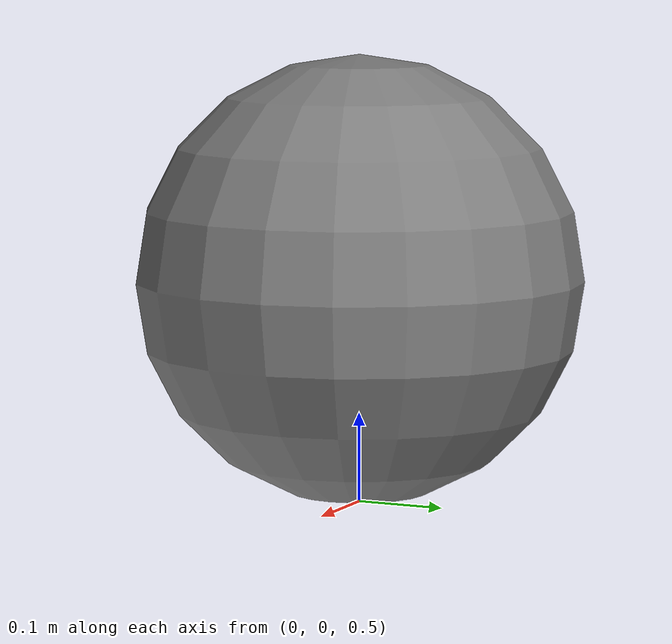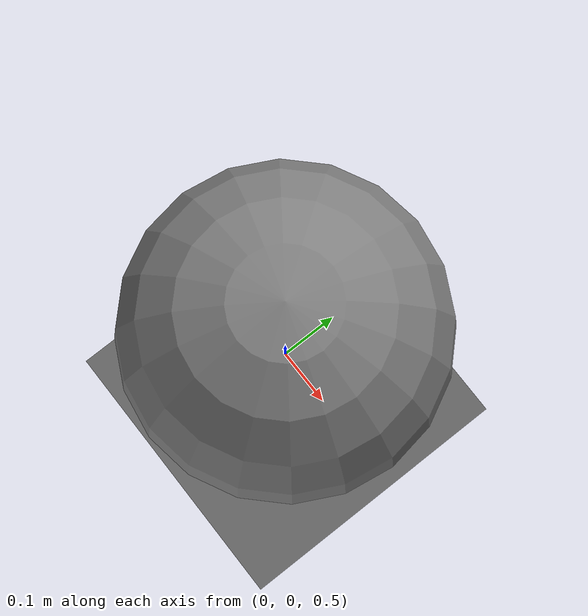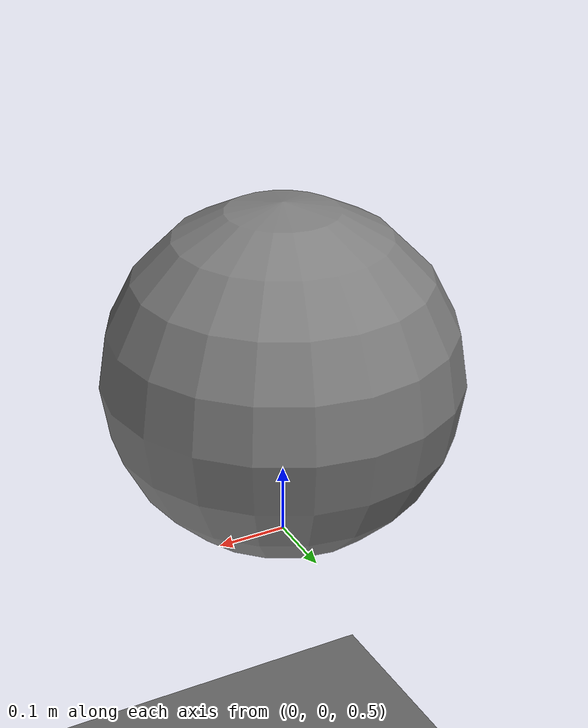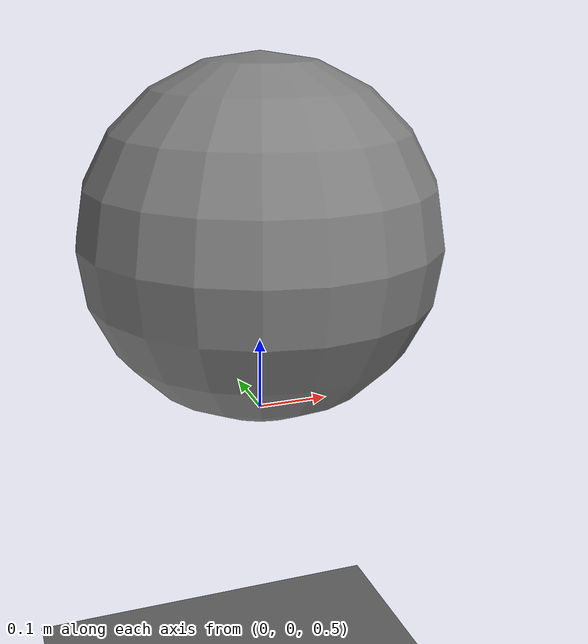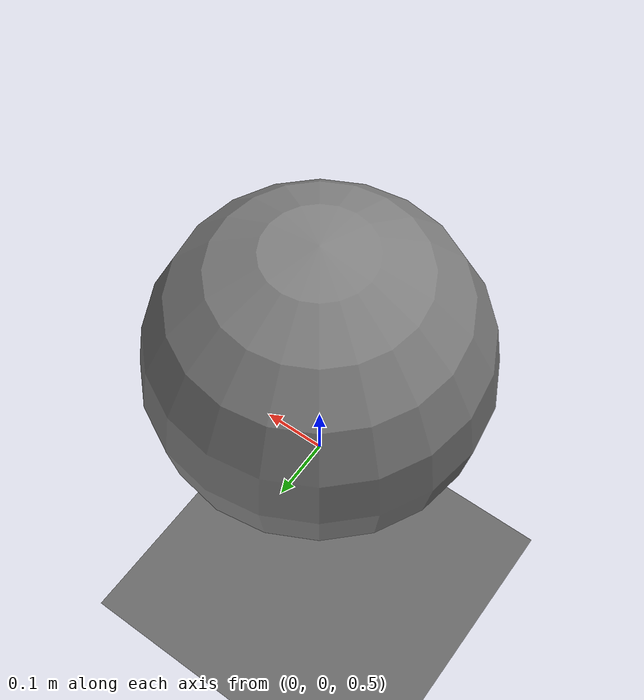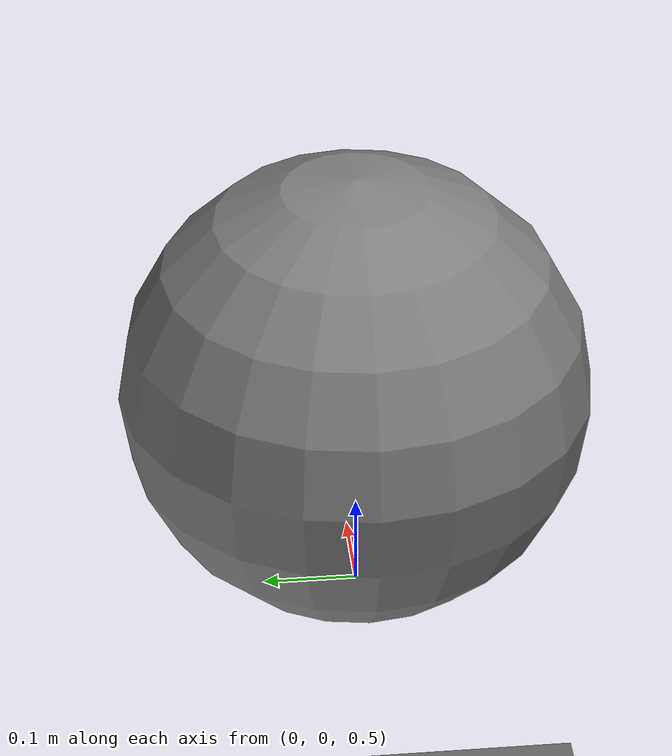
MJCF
<mujoco model="ant">
  <compiler angle="degree" coordinate="local" inertiafromgeom="true"/>
  <option timestep="0.01" iterations="4" />
  <custom>
    <!-- brax custom params -->
    <numeric data="0.0 0.0 0.55 1.0 0.0 0.0 0.0 0.0 1.0 0.0 -1.0 0.0 -1.0 0.0 1.0" name="init_qpos"/>
    <numeric data="1000" name="constraint_limit_stiffness"/>
    <numeric data="4000" name="constraint_stiffness"/>
    <numeric data="10" name="constraint_ang_damping"/>
    <numeric data="20" name="constraint_vel_damping"/>
    <numeric data="0.5" name="joint_scale_pos"/>
    <numeric data="0.2" name="joint_scale_ang"/>
    <numeric data="0.0" name="ang_damping"/>
    <numeric data="1" name="spring_mass_scale"/>
    <numeric data="1" name="spring_inertia_scale"/>
    <numeric data="15" name="solver_maxls"/>
  </custom>
  <default>
    <joint armature="1" damping="1" limited="true"/>
    <geom contype="0" conaffinity="0" condim="3" density="5.0" friction="1 0.5 0.5"/>
  </default>
  <asset>
    <texture builtin="gradient" height="100" rgb1="1 1 1" rgb2="0 0 0" type="skybox" width="100"/>
    <texture builtin="flat" height="1278" mark="cross" markrgb="1 1 1" name="texgeom" random="0.01" rgb1="0.8 0.6 0.4" rgb2="0.8 0.6 0.4" type="cube" width="127"/>
    <texture builtin="checker" height="100" name="texplane" rgb1="0 0 0" rgb2="0.8 0.8 0.8" type="2d" width="100"/>
    <material name="MatPlane" reflectance="0.5" shininess="1" specular="1" texrepeat="60 60" texture="texplane"/>
    <material name="geom" texture="texgeom" texuniform="true"/>
  </asset>
  <worldbody>
    <light cutoff="100" diffuse="1 1 1" dir="-0 0 -1.3" directional="true" exponent="1" pos="0 0 1.3" specular=".1 .1 .1"/>
    <geom conaffinity="1" condim="3" material="MatPlane" name="floor" pos="0 0 0" size="40 40 40" type="plane"/>
    <body name="torso" pos="0 0 0.75">
      <camera name="track" mode="trackcom" pos="0 -3 0.3" xyaxes="1 0 0 0 0 1"/>
      <geom name="torso_geom" pos="0 0 0" size="0.25" type="sphere"/>
      <joint armature="0" damping="0" limited="false" margin="0.01" name="root" pos="0 0 0" type="free"/>
    <!-- bodies -->
    </body>
  </worldbody>
  <actuator>
    <!-- actuators-->
  </actuator>
</mujoco>
